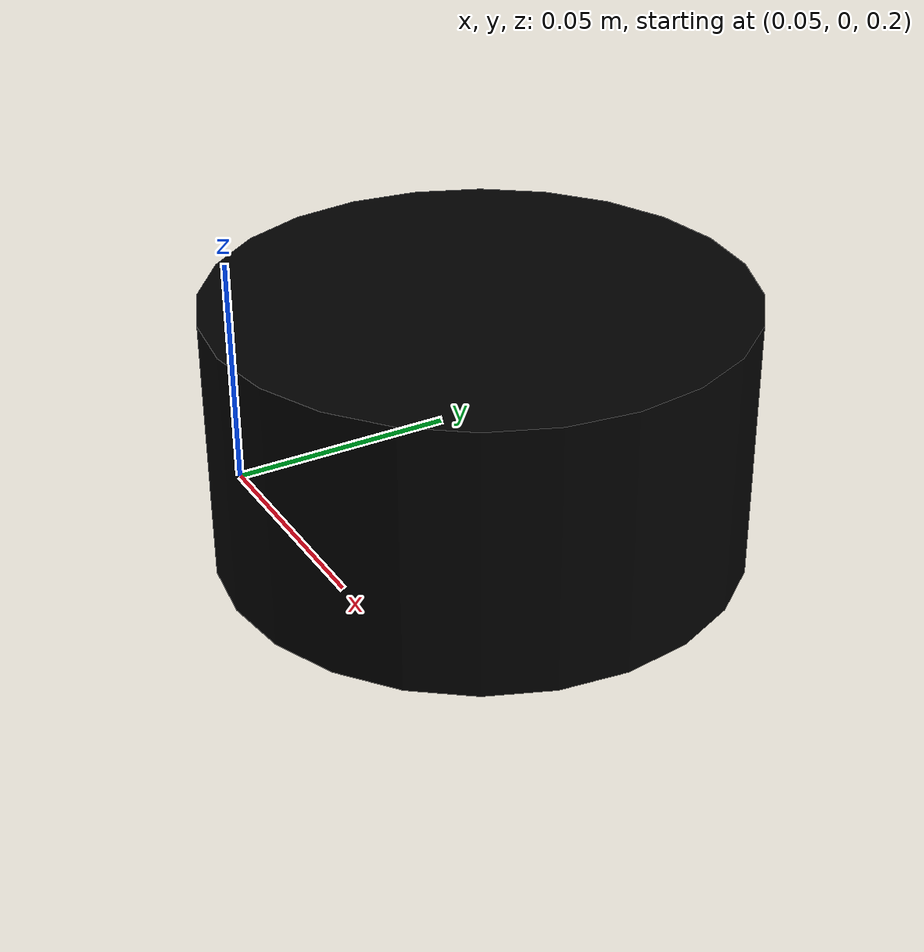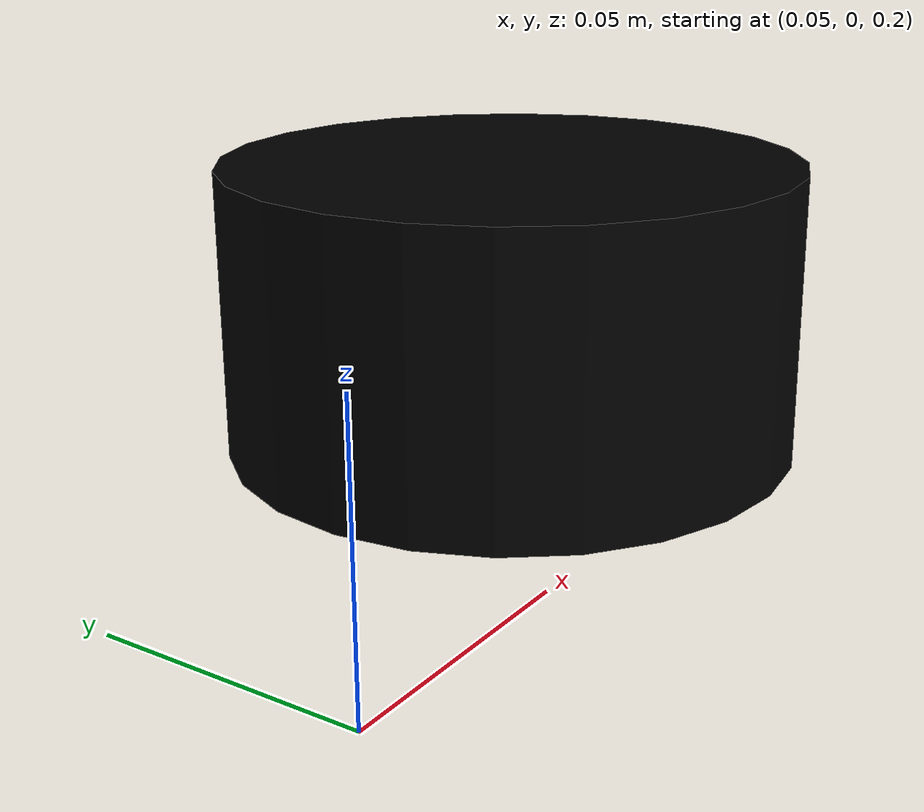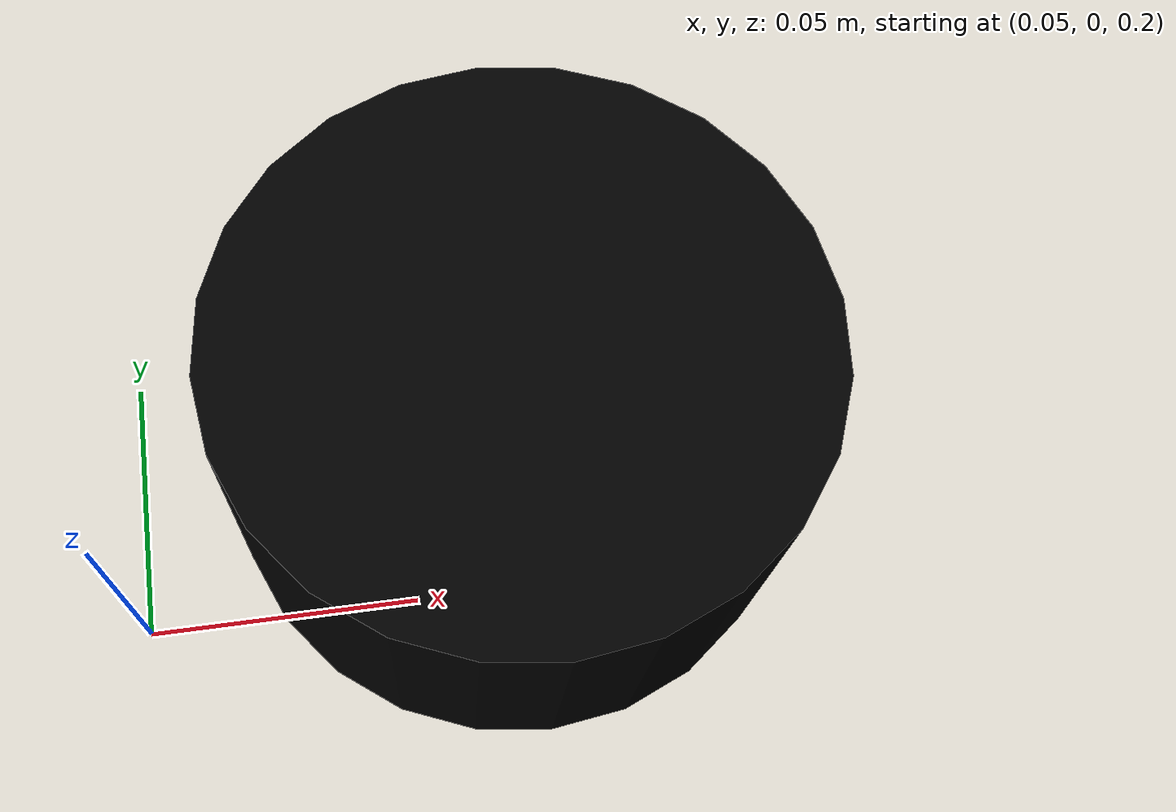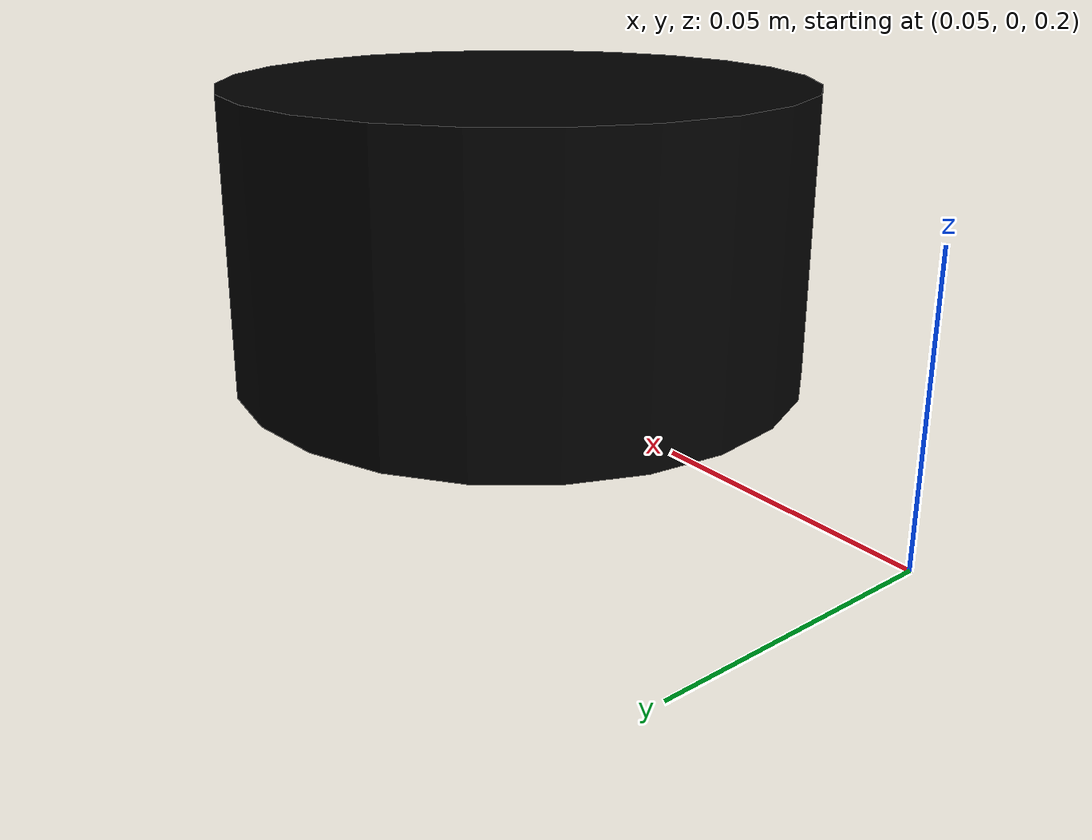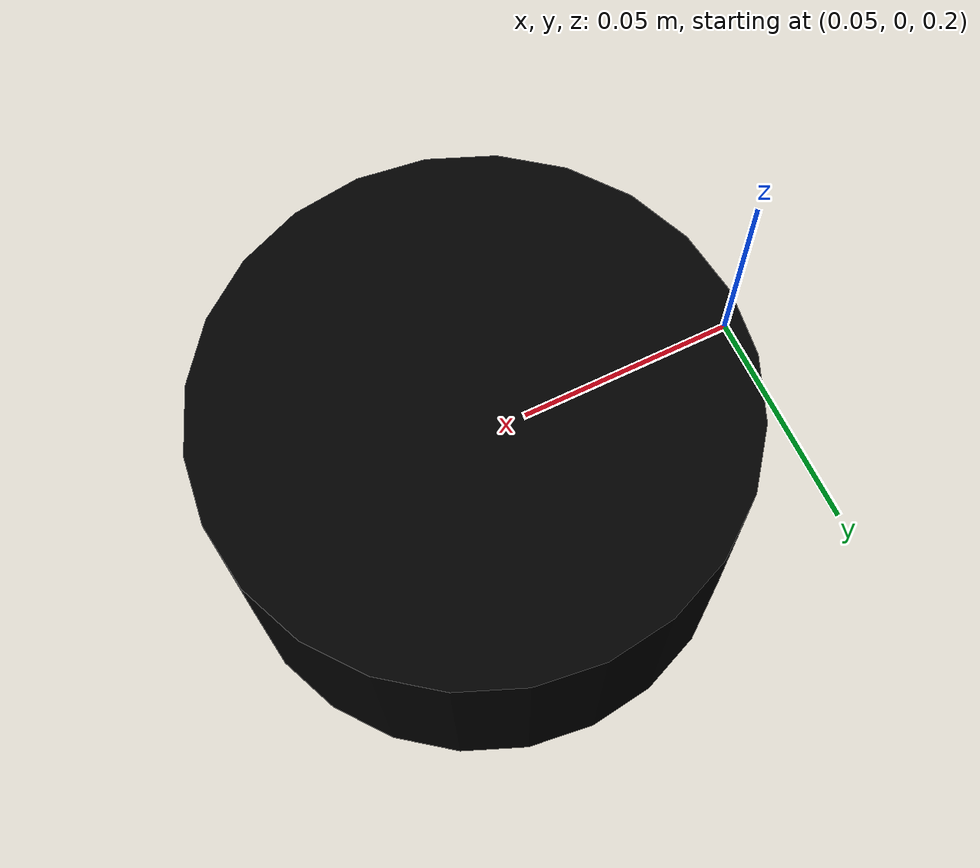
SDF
<?xml version='1.0'?>
<sdf version="1.10">
  <model name="lidar_sensor">
    <link name="lidar_link">
      <!-- pose, collision, etc. -->
      <pose>.12 .02 .242 0 0 0</pose>
      <visual name="lidar_visual">
        <pose relative_to='lidar_link'>0 0 0 0 0 0</pose>
        <geometry>
          <cylinder>
            <radius>0.05</radius>
            <length>0.05</length>
          </cylinder>
        </geometry>
        <material>
          <ambient>0.0 0.0 0.0 1.0</ambient>
          <diffuse>0.0 0.0 0.0 1.0</diffuse>
          <specular>0.0 0.0 0.0 1.0</specular>
          <emissive>0.0 0.0 0.0 1.0</emissive>
        </material>
      </visual>

      <sensor name='gpu_lidar' type='gpu_lidar'>
        <!-- lidar conf -->
        <topic>lidar</topic>
        <always_on>true</always_on>
        <visualize>true</visualize>
        <update_rate>5</update_rate>
        <ray>
          <scan>
            <horizontal>
              <samples>360</samples>
              <resolution>1.00000</resolution>
              <min_angle>0.000000</min_angle>
              <max_angle>6.280000</max_angle>
            </horizontal>
          </scan>
          <range>
            <min>0.120000</min>
            <max>3.5</max>
            <resolution>0.015000</resolution>
          </range>
          <noise>
            <type>gaussian</type>
            <mean>0.0</mean>
            <stddev>0.01</stddev>
          </noise>
        </ray>
      </sensor>
    </link>
  </model>
</sdf>
